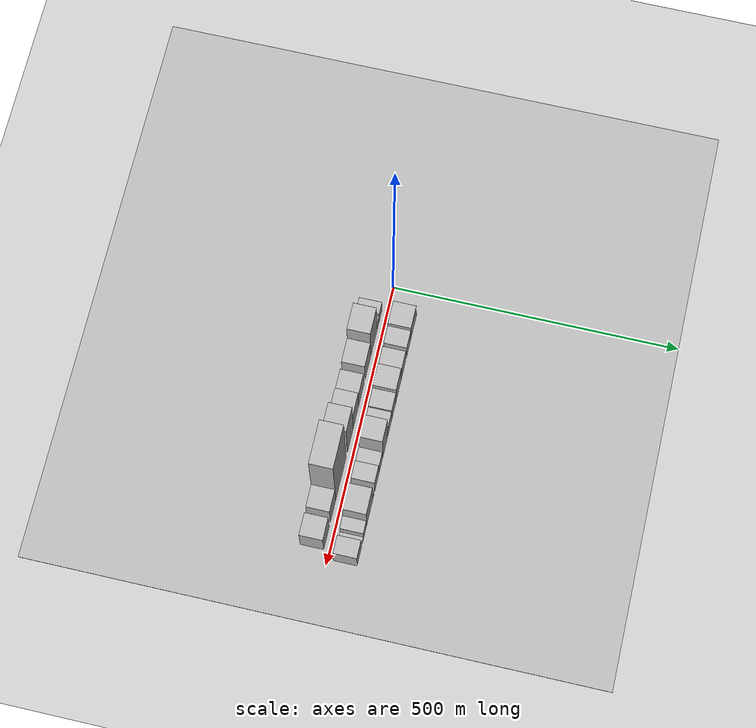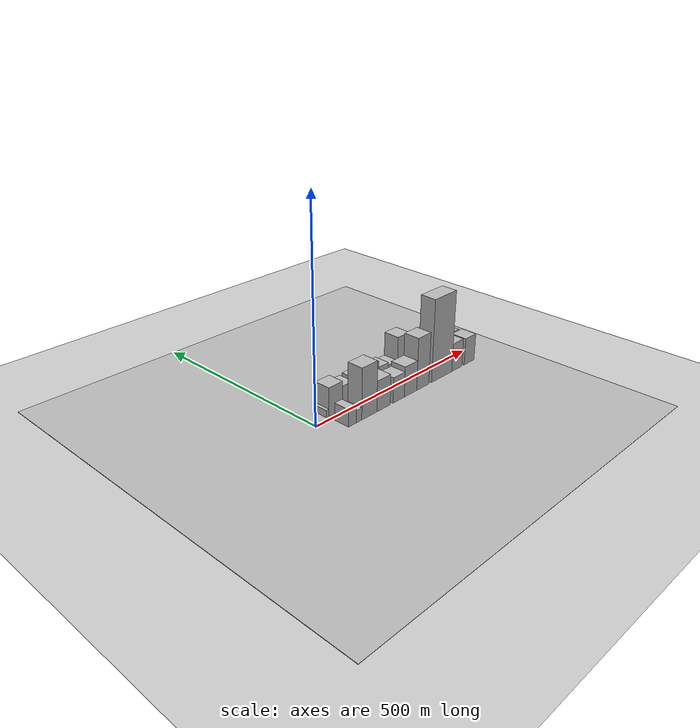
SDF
<?xml version="1.0" encoding="utf-8"?>

<sdf version="1.6">

   <world name="default">

      <gui fullscreen="0">

         <camera name="user_camera">

            <pose>-15 0 4.57585 0 0 0</pose>

            <view_controller>orbit</view_controller>

         </camera>

      </gui>

      <scene>

         <sky>

           <clouds>

             <speed>12</speed>

           </clouds>

         </sky>

         <ambient>0.4 0.4 0.4 1</ambient>

         <background>0.7 0.7 0.7 1</background>

         <shadows>1</shadows>

      </scene>

      <gravity>0 0 -9.8066</gravity>

      <magnetic_field>6e-06 2.3e-05 -4.2e-05</magnetic_field>

      <physics default="0" name="default_physics" type="ode">

         <ode>

            <solver>

               <type>quick</type>

               <iters>10</iters>

               <sor>1.0</sor>

               <use_dynamic_moi_rescaling>0</use_dynamic_moi_rescaling>

            </solver>

            <constraints>

               <cfm>0</cfm>

               <erp>0.2</erp>

               <contact_max_correcting_vel>100</contact_max_correcting_vel>

               <contact_surface_layer>0.001</contact_surface_layer>

            </constraints>

         </ode>

         <max_step_size>0.004</max_step_size>

         <real_time_factor>1</real_time_factor>

         <real_time_update_rate>250</real_time_update_rate>

      </physics>

      <light name="sun" type="directional">

         <cast_shadows>1</cast_shadows>

         <pose>0 0 10 0 0 0</pose>

         <diffuse>0.8 0.8 0.8 1</diffuse>

         <specular>0.2 0.2 0.2 1</specular>

         <attenuation>

            <range>1000</range>

            <constant>0.9</constant>

            <linear>0.01</linear>

            <quadratic>0.001</quadratic>

         </attenuation>

         <direction>-0.5 0.1 -0.9</direction>

      </light>

      <include>

         <name>ground_plane_1</name>

         <uri>model://HANNAS_ground_plane</uri>

         <pose>0 0 0  0 0 0</pose>

      </include>

      <include>

         <name>ground_plane_2</name>

         <uri>model://HANNAS_ground_plane</uri>

         <pose>100 0 0  0 0 0</pose>

      </include>

      <model name="building_1">

         <static>1</static>

         <pose frame="">43.7642 30.0000 0 0.000000 0.000000 1.570796</pose>

         <link name="link">

            <pose frame="">0 0 9.00 0 0 0</pose>

            <collision name="collision">

               <geometry>

                  <box>

                     <size>40.0000 7.5284 18.0000</size>

                  </box>

               </geometry>

               <max_contacts>10</max_contacts>

               <surface>

                  <contact>

                     <ode/>

                  </contact>

                  <bounce/>

                  <friction>

                     <torsional>

                        <ode/>

                     </torsional>

                     <ode/>

                  </friction>

               </surface>

            </collision>

            <visual name="visual">

               <cast_shadows>0</cast_shadows>

               <geometry>

                  <box>

                     <size>40.0000 7.5284 18.0000</size>

                  </box>

               </geometry>

               <material>

                  <script>

                     <uri>model://HANNAS_wall/materials/scripts</uri>

                     <uri>model://HANNAS_wall/materials/textures</uri>

                     <name>vrc/HANNAS_wall</name>

                  </script>

               </material>

            </visual>

            <self_collide>0</self_collide>

            <enable_wind>0</enable_wind>

            <kinematic>0</kinematic>

         </link>

      </model>

      <model name="building_2">

         <static>1</static>

         <pose frame="">68.0326 30.0000 0 0.000000 0.000000 1.570796</pose>

         <link name="link">

            <pose frame="">0 0 34.50 0 0 0</pose>

            <collision name="collision">

               <geometry>

                  <box>

                     <size>40.0000 41.0084 69.0000</size>

                  </box>

               </geometry>

               <max_contacts>10</max_contacts>

               <surface>

                  <contact>

                     <ode/>

                  </contact>

                  <bounce/>

                  <friction>

                     <torsional>

                        <ode/>

                     </torsional>

                     <ode/>

                  </friction>

               </surface>

            </collision>

            <visual name="visual">

               <cast_shadows>0</cast_shadows>

               <geometry>

                  <box>

                     <size>40.0000 41.0084 69.0000</size>

                  </box>

               </geometry>

               <material>

                  <script>

                     <uri>model://HANNAS_wall/materials/scripts</uri>

                     <uri>model://HANNAS_wall/materials/textures</uri>

                     <name>vrc/HANNAS_wall</name>

                  </script>

               </material>

            </visual>

            <self_collide>0</self_collide>

            <enable_wind>0</enable_wind>

            <kinematic>0</kinematic>

         </link>

      </model>

      <model name="building_3">

         <static>1</static>

         <pose frame="">104.3769 30.0000 0 0.000000 0.000000 1.570796</pose>

         <link name="link">

            <pose frame="">0 0 28.50 0 0 0</pose>

            <collision name="collision">

               <geometry>

                  <box>

                     <size>40.0000 31.6802 57.0000</size>

                  </box>

               </geometry>

               <max_contacts>10</max_contacts>

               <surface>

                  <contact>

                     <ode/>

                  </contact>

                  <bounce/>

                  <friction>

                     <torsional>

                        <ode/>

                     </torsional>

                     <ode/>

                  </friction>

               </surface>

            </collision>

            <visual name="visual">

               <cast_shadows>0</cast_shadows>

               <geometry>

                  <box>

                     <size>40.0000 31.6802 57.0000</size>

                  </box>

               </geometry>

               <material>

                  <script>

                     <uri>model://HANNAS_wall/materials/scripts</uri>

                     <uri>model://HANNAS_wall/materials/textures</uri>

                     <name>vrc/HANNAS_wall</name>

                  </script>

               </material>

            </visual>

            <self_collide>0</self_collide>

            <enable_wind>0</enable_wind>

            <kinematic>0</kinematic>

         </link>

      </model>

      <model name="building_4">

         <static>1</static>

         <pose frame="">143.5606 30.0000 0 0.000000 0.000000 1.570796</pose>

         <link name="link">

            <pose frame="">0 0 30.00 0 0 0</pose>

            <collision name="collision">

               <geometry>

                  <box>

                     <size>40.0000 32.6871 60.0000</size>

                  </box>

               </geometry>

               <max_contacts>10</max_contacts>

               <surface>

                  <contact>

                     <ode/>

                  </contact>

                  <bounce/>

                  <friction>

                     <torsional>

                        <ode/>

                     </torsional>

                     <ode/>

                  </friction>

               </surface>

            </collision>

            <visual name="visual">

               <cast_shadows>0</cast_shadows>

               <geometry>

                  <box>

                     <size>40.0000 32.6871 60.0000</size>

                  </box>

               </geometry>

               <material>

                  <script>

                     <uri>model://HANNAS_wall/materials/scripts</uri>

                     <uri>model://HANNAS_wall/materials/textures</uri>

                     <name>vrc/HANNAS_wall</name>

                  </script>

               </material>

            </visual>

            <self_collide>0</self_collide>

            <enable_wind>0</enable_wind>

            <kinematic>0</kinematic>

         </link>

      </model>

      <model name="building_5">

         <static>1</static>

         <pose frame="">182.4428 30.0000 0 0.000000 0.000000 1.570796</pose>

         <link name="link">

            <pose frame="">0 0 37.50 0 0 0</pose>

            <collision name="collision">

               <geometry>

                  <box>

                     <size>40.0000 39.0774 75.0000</size>

                  </box>

               </geometry>

               <max_contacts>10</max_contacts>

               <surface>

                  <contact>

                     <ode/>

                  </contact>

                  <bounce/>

                  <friction>

                     <torsional>

                        <ode/>

                     </torsional>

                     <ode/>

                  </friction>

               </surface>

            </collision>

            <visual name="visual">

               <cast_shadows>0</cast_shadows>

               <geometry>

                  <box>

                     <size>40.0000 39.0774 75.0000</size>

                  </box>

               </geometry>

               <material>

                  <script>

                     <uri>model://HANNAS_wall/materials/scripts</uri>

                     <uri>model://HANNAS_wall/materials/textures</uri>

                     <name>vrc/HANNAS_wall</name>

                  </script>

               </material>

            </visual>

            <self_collide>0</self_collide>

            <enable_wind>0</enable_wind>

            <kinematic>0</kinematic>

         </link>

      </model>

      <model name="building_6">

         <static>1</static>

         <pose frame="">218.1601 30.0000 0 0.000000 0.000000 1.570796</pose>

         <link name="link">

            <pose frame="">0 0 30.00 0 0 0</pose>

            <collision name="collision">

               <geometry>

                  <box>

                     <size>40.0000 32.3571 60.0000</size>

                  </box>

               </geometry>

               <max_contacts>10</max_contacts>

               <surface>

                  <contact>

                     <ode/>

                  </contact>

                  <bounce/>

                  <friction>

                     <torsional>

                        <ode/>

                     </torsional>

                     <ode/>

                  </friction>

               </surface>

            </collision>

            <visual name="visual">

               <cast_shadows>0</cast_shadows>

               <geometry>

                  <box>

                     <size>40.0000 32.3571 60.0000</size>

                  </box>

               </geometry>

               <material>

                  <script>

                     <uri>model://HANNAS_wall/materials/scripts</uri>

                     <uri>model://HANNAS_wall/materials/textures</uri>

                     <name>vrc/HANNAS_wall</name>

                  </script>

               </material>

            </visual>

            <self_collide>0</self_collide>

            <enable_wind>0</enable_wind>

            <kinematic>0</kinematic>

         </link>

      </model>

      <model name="building_7">

         <static>1</static>

         <pose frame="">249.4875 30.0000 0 0.000000 0.000000 1.570796</pose>

         <link name="link">

            <pose frame="">0 0 27.00 0 0 0</pose>

            <collision name="collision">

               <geometry>

                  <box>

                     <size>40.0000 30.2976 54.0000</size>

                  </box>

               </geometry>

               <max_contacts>10</max_contacts>

               <surface>

                  <contact>

                     <ode/>

                  </contact>

                  <bounce/>

                  <friction>

                     <torsional>

                        <ode/>

                     </torsional>

                     <ode/>

                  </friction>

               </surface>

            </collision>

            <visual name="visual">

               <cast_shadows>0</cast_shadows>

               <geometry>

                  <box>

                     <size>40.0000 30.2976 54.0000</size>

                  </box>

               </geometry>

               <material>

                  <script>

                     <uri>model://HANNAS_wall/materials/scripts</uri>

                     <uri>model://HANNAS_wall/materials/textures</uri>

                     <name>vrc/HANNAS_wall</name>

                  </script>

               </material>

            </visual>

            <self_collide>0</self_collide>

            <enable_wind>0</enable_wind>

            <kinematic>0</kinematic>

         </link>

      </model>

      <model name="building_8">

         <static>1</static>

         <pose frame="">283.9996 30.0000 0 0.000000 0.000000 1.570796</pose>

         <link name="link">

            <pose frame="">0 0 55.50 0 0 0</pose>

            <collision name="collision">

               <geometry>

                  <box>

                     <size>40.0000 38.7266 111.0000</size>

                  </box>

               </geometry>

               <max_contacts>10</max_contacts>

               <surface>

                  <contact>

                     <ode/>

                  </contact>

                  <bounce/>

                  <friction>

                     <torsional>

                        <ode/>

                     </torsional>

                     <ode/>

                  </friction>

               </surface>

            </collision>

            <visual name="visual">

               <cast_shadows>0</cast_shadows>

               <geometry>

                  <box>

                     <size>40.0000 38.7266 111.0000</size>

                  </box>

               </geometry>

               <material>

                  <script>

                     <uri>model://HANNAS_wall/materials/scripts</uri>

                     <uri>model://HANNAS_wall/materials/textures</uri>

                     <name>vrc/HANNAS_wall</name>

                  </script>

               </material>

            </visual>

            <self_collide>0</self_collide>

            <enable_wind>0</enable_wind>

            <kinematic>0</kinematic>

         </link>

      </model>

      <model name="building_9">

         <static>1</static>

         <pose frame="">316.9117 30.0000 0 0.000000 0.000000 1.570796</pose>

         <link name="link">

            <pose frame="">0 0 24.00 0 0 0</pose>

            <collision name="collision">

               <geometry>

                  <box>

                     <size>40.0000 27.0976 48.0000</size>

                  </box>

               </geometry>

               <max_contacts>10</max_contacts>

               <surface>

                  <contact>

                     <ode/>

                  </contact>

                  <bounce/>

                  <friction>

                     <torsional>

                        <ode/>

                     </torsional>

                     <ode/>

                  </friction>

               </surface>

            </collision>

            <visual name="visual">

               <cast_shadows>0</cast_shadows>

               <geometry>

                  <box>

                     <size>40.0000 27.0976 48.0000</size>

                  </box>

               </geometry>

               <material>

                  <script>

                     <uri>model://HANNAS_wall/materials/scripts</uri>

                     <uri>model://HANNAS_wall/materials/textures</uri>

                     <name>vrc/HANNAS_wall</name>

                  </script>

               </material>

            </visual>

            <self_collide>0</self_collide>

            <enable_wind>0</enable_wind>

            <kinematic>0</kinematic>

         </link>

      </model>

      <model name="building_10">

         <static>1</static>

         <pose frame="">345.7144 30.0000 0 0.000000 0.000000 1.570796</pose>

         <link name="link">

            <pose frame="">0 0 30.00 0 0 0</pose>

            <collision name="collision">

               <geometry>

                  <box>

                     <size>40.0000 30.5079 60.0000</size>

                  </box>

               </geometry>

               <max_contacts>10</max_contacts>

               <surface>

                  <contact>

                     <ode/>

                  </contact>

                  <bounce/>

                  <friction>

                     <torsional>

                        <ode/>

                     </torsional>

                     <ode/>

                  </friction>

               </surface>

            </collision>

            <visual name="visual">

               <cast_shadows>0</cast_shadows>

               <geometry>

                  <box>

                     <size>40.0000 30.5079 60.0000</size>

                  </box>

               </geometry>

               <material>

                  <script>

                     <uri>model://HANNAS_wall/materials/scripts</uri>

                     <uri>model://HANNAS_wall/materials/textures</uri>

                     <name>vrc/HANNAS_wall</name>

                  </script>

               </material>

            </visual>

            <self_collide>0</self_collide>

            <enable_wind>0</enable_wind>

            <kinematic>0</kinematic>

         </link>

      </model>

      <model name="building_11">

         <static>1</static>

         <pose frame="">370.7716 30.0000 0 0.000000 0.000000 1.570796</pose>

         <link name="link">

            <pose frame="">0 0 10.50 0 0 0</pose>

            <collision name="collision">

               <geometry>

                  <box>

                     <size>40.0000 9.6065 21.0000</size>

                  </box>

               </geometry>

               <max_contacts>10</max_contacts>

               <surface>

                  <contact>

                     <ode/>

                  </contact>

                  <bounce/>

                  <friction>

                     <torsional>

                        <ode/>

                     </torsional>

                     <ode/>

                  </friction>

               </surface>

            </collision>

            <visual name="visual">

               <cast_shadows>0</cast_shadows>

               <geometry>

                  <box>

                     <size>40.0000 9.6065 21.0000</size>

                  </box>

               </geometry>

               <material>

                  <script>

                     <uri>model://HANNAS_wall/materials/scripts</uri>

                     <uri>model://HANNAS_wall/materials/textures</uri>

                     <name>vrc/HANNAS_wall</name>

                  </script>

               </material>

            </visual>

            <self_collide>0</self_collide>

            <enable_wind>0</enable_wind>

            <kinematic>0</kinematic>

         </link>

      </model>

      <model name="building_12">

         <static>1</static>

         <pose frame="">398.2686 30.0000 0 0.000000 0.000000 1.570796</pose>

         <link name="link">

            <pose frame="">0 0 42.00 0 0 0</pose>

            <collision name="collision">

               <geometry>

                  <box>

                     <size>40.0000 45.3874 84.0000</size>

                  </box>

               </geometry>

               <max_contacts>10</max_contacts>

               <surface>

                  <contact>

                     <ode/>

                  </contact>

                  <bounce/>

                  <friction>

                     <torsional>

                        <ode/>

                     </torsional>

                     <ode/>

                  </friction>

               </surface>

            </collision>

            <visual name="visual">

               <cast_shadows>0</cast_shadows>

               <geometry>

                  <box>

                     <size>40.0000 45.3874 84.0000</size>

                  </box>

               </geometry>

               <material>

                  <script>

                     <uri>model://HANNAS_wall/materials/scripts</uri>

                     <uri>model://HANNAS_wall/materials/textures</uri>

                     <name>vrc/HANNAS_wall</name>

                  </script>

               </material>

            </visual>

            <self_collide>0</self_collide>

            <enable_wind>0</enable_wind>

            <kinematic>0</kinematic>

         </link>

      </model>

      <model name="building_13">

         <static>1</static>

         <pose frame="">432.0175 30.0000 0 0.000000 0.000000 1.570796</pose>

         <link name="link">

            <pose frame="">0 0 19.50 0 0 0</pose>

            <collision name="collision">

               <geometry>

                  <box>

                     <size>40.0000 22.1104 39.0000</size>

                  </box>

               </geometry>

               <max_contacts>10</max_contacts>

               <surface>

                  <contact>

                     <ode/>

                  </contact>

                  <bounce/>

                  <friction>

                     <torsional>

                        <ode/>

                     </torsional>

                     <ode/>

                  </friction>

               </surface>

            </collision>

            <visual name="visual">

               <cast_shadows>0</cast_shadows>

               <geometry>

                  <box>

                     <size>40.0000 22.1104 39.0000</size>

                  </box>

               </geometry>

               <material>

                  <script>

                     <uri>model://HANNAS_wall/materials/scripts</uri>

                     <uri>model://HANNAS_wall/materials/textures</uri>

                     <name>vrc/HANNAS_wall</name>

                  </script>

               </material>

            </visual>

            <self_collide>0</self_collide>

            <enable_wind>0</enable_wind>

            <kinematic>0</kinematic>

         </link>

      </model>

      <model name="building_14">

         <static>1</static>

         <pose frame="">446.6942 30.0000 0 0.000000 0.000000 1.570796</pose>

         <link name="link">

            <pose frame="">0 0 7.50 0 0 0</pose>

            <collision name="collision">

               <geometry>

                  <box>

                     <size>40.0000 7.2430 15.0000</size>

                  </box>

               </geometry>

               <max_contacts>10</max_contacts>

               <surface>

                  <contact>

                     <ode/>

                  </contact>

                  <bounce/>

                  <friction>

                     <torsional>

                        <ode/>

                     </torsional>

                     <ode/>

                  </friction>

               </surface>

            </collision>

            <visual name="visual">

               <cast_shadows>0</cast_shadows>

               <geometry>

                  <box>

                     <size>40.0000 7.2430 15.0000</size>

                  </box>

               </geometry>

               <material>

                  <script>

                     <uri>model://HANNAS_wall/materials/scripts</uri>

                     <uri>model://HANNAS_wall/materials/textures</uri>

                     <name>vrc/HANNAS_wall</name>

                  </script>

               </material>

            </visual>

            <self_collide>0</self_collide>

            <enable_wind>0</enable_wind>

            <kinematic>0</kinematic>

         </link>

      </model>

      <model name="building_15">

         <static>1</static>

         <pose frame="">473.9681 30.0000 0 0.000000 0.000000 1.570796</pose>

         <link name="link">

            <pose frame="">0 0 28.50 0 0 0</pose>

            <collision name="collision">

               <geometry>

                  <box>

                     <size>40.0000 31.3047 57.0000</size>

                  </box>

               </geometry>

               <max_contacts>10</max_contacts>

               <surface>

                  <contact>

                     <ode/>

                  </contact>

                  <bounce/>

                  <friction>

                     <torsional>

                        <ode/>

                     </torsional>

                     <ode/>

                  </friction>

               </surface>

            </collision>

            <visual name="visual">

               <cast_shadows>0</cast_shadows>

               <geometry>

                  <box>

                     <size>40.0000 31.3047 57.0000</size>

                  </box>

               </geometry>

               <material>

                  <script>

                     <uri>model://HANNAS_wall/materials/scripts</uri>

                     <uri>model://HANNAS_wall/materials/textures</uri>

                     <name>vrc/HANNAS_wall</name>

                  </script>

               </material>

            </visual>

            <self_collide>0</self_collide>

            <enable_wind>0</enable_wind>

            <kinematic>0</kinematic>

         </link>

      </model>

      <model name="building_16">

         <static>1</static>

         <pose frame="">56.0667 -30.0000 0 0.000000 0.000000 1.570796</pose>

         <link name="link">

            <pose frame="">0 0 21.00 0 0 0</pose>

            <collision name="collision">

               <geometry>

                  <box>

                     <size>40.0000 22.1335 42.0000</size>

                  </box>

               </geometry>

               <max_contacts>10</max_contacts>

               <surface>

                  <contact>

                     <ode/>

                  </contact>

                  <bounce/>

                  <friction>

                     <torsional>

                        <ode/>

                     </torsional>

                     <ode/>

                  </friction>

               </surface>

            </collision>

            <visual name="visual">

               <cast_shadows>0</cast_shadows>

               <geometry>

                  <box>

                     <size>40.0000 22.1335 42.0000</size>

                  </box>

               </geometry>

               <material>

                  <script>

                     <uri>model://HANNAS_wall/materials/scripts</uri>

                     <uri>model://HANNAS_wall/materials/textures</uri>

                     <name>vrc/HANNAS_wall</name>

                  </script>

               </material>

            </visual>

            <self_collide>0</self_collide>

            <enable_wind>0</enable_wind>

            <kinematic>0</kinematic>

         </link>

      </model>

      <model name="building_17">

         <static>1</static>

         <pose frame="">75.7608 -30.0000 0 0.000000 0.000000 1.570796</pose>

         <link name="link">

            <pose frame="">0 0 15.00 0 0 0</pose>

            <collision name="collision">

               <geometry>

                  <box>

                     <size>40.0000 17.2546 30.0000</size>

                  </box>

               </geometry>

               <max_contacts>10</max_contacts>

               <surface>

                  <contact>

                     <ode/>

                  </contact>

                  <bounce/>

                  <friction>

                     <torsional>

                        <ode/>

                     </torsional>

                     <ode/>

                  </friction>

               </surface>

            </collision>

            <visual name="visual">

               <cast_shadows>0</cast_shadows>

               <geometry>

                  <box>

                     <size>40.0000 17.2546 30.0000</size>

                  </box>

               </geometry>

               <material>

                  <script>

                     <uri>model://HANNAS_wall/materials/scripts</uri>

                     <uri>model://HANNAS_wall/materials/textures</uri>

                     <name>vrc/HANNAS_wall</name>

                  </script>

               </material>

            </visual>

            <self_collide>0</self_collide>

            <enable_wind>0</enable_wind>

            <kinematic>0</kinematic>

         </link>

      </model>

      <model name="building_18">

         <static>1</static>

         <pose frame="">107.8371 -30.0000 0 0.000000 0.000000 1.570796</pose>

         <link name="link">

            <pose frame="">0 0 61.50 0 0 0</pose>

            <collision name="collision">

               <geometry>

                  <box>

                     <size>40.0000 46.8979 123.0000</size>

                  </box>

               </geometry>

               <max_contacts>10</max_contacts>

               <surface>

                  <contact>

                     <ode/>

                  </contact>

                  <bounce/>

                  <friction>

                     <torsional>

                        <ode/>

                     </torsional>

                     <ode/>

                  </friction>

               </surface>

            </collision>

            <visual name="visual">

               <cast_shadows>0</cast_shadows>

               <geometry>

                  <box>

                     <size>40.0000 46.8979 123.0000</size>

                  </box>

               </geometry>

               <material>

                  <script>

                     <uri>model://HANNAS_wall/materials/scripts</uri>

                     <uri>model://HANNAS_wall/materials/textures</uri>

                     <name>vrc/HANNAS_wall</name>

                  </script>

               </material>

            </visual>

            <self_collide>0</self_collide>

            <enable_wind>0</enable_wind>

            <kinematic>0</kinematic>

         </link>

      </model>

      <model name="building_19">

         <static>1</static>

         <pose frame="">152.6218 -30.0000 0 0.000000 0.000000 1.570796</pose>

         <link name="link">

            <pose frame="">0 0 37.50 0 0 0</pose>

            <collision name="collision">

               <geometry>

                  <box>

                     <size>40.0000 42.6716 75.0000</size>

                  </box>

               </geometry>

               <max_contacts>10</max_contacts>

               <surface>

                  <contact>

                     <ode/>

                  </contact>

                  <bounce/>

                  <friction>

                     <torsional>

                        <ode/>

                     </torsional>

                     <ode/>

                  </friction>

               </surface>

            </collision>

            <visual name="visual">

               <cast_shadows>0</cast_shadows>

               <geometry>

                  <box>

                     <size>40.0000 42.6716 75.0000</size>

                  </box>

               </geometry>

               <material>

                  <script>

                     <uri>model://HANNAS_wall/materials/scripts</uri>

                     <uri>model://HANNAS_wall/materials/textures</uri>

                     <name>vrc/HANNAS_wall</name>

                  </script>

               </material>

            </visual>

            <self_collide>0</self_collide>

            <enable_wind>0</enable_wind>

            <kinematic>0</kinematic>

         </link>

      </model>

      <model name="building_20">

         <static>1</static>

         <pose frame="">201.7921 -30.0000 0 0.000000 0.000000 1.570796</pose>

         <link name="link">

            <pose frame="">0 0 31.50 0 0 0</pose>

            <collision name="collision">

               <geometry>

                  <box>

                     <size>40.0000 37.6690 63.0000</size>

                  </box>

               </geometry>

               <max_contacts>10</max_contacts>

               <surface>

                  <contact>

                     <ode/>

                  </contact>

                  <bounce/>

                  <friction>

                     <torsional>

                        <ode/>

                     </torsional>

                     <ode/>

                  </friction>

               </surface>

            </collision>

            <visual name="visual">

               <cast_shadows>0</cast_shadows>

               <geometry>

                  <box>

                     <size>40.0000 37.6690 63.0000</size>

                  </box>

               </geometry>

               <material>

                  <script>

                     <uri>model://HANNAS_wall/materials/scripts</uri>

                     <uri>model://HANNAS_wall/materials/textures</uri>

                     <name>vrc/HANNAS_wall</name>

                  </script>

               </material>

            </visual>

            <self_collide>0</self_collide>

            <enable_wind>0</enable_wind>

            <kinematic>0</kinematic>

         </link>

      </model>

      <model name="building_21">

         <static>1</static>

         <pose frame="">241.5884 -30.0000 0 0.000000 0.000000 1.570796</pose>

         <link name="link">

            <pose frame="">0 0 37.50 0 0 0</pose>

            <collision name="collision">

               <geometry>

                  <box>

                     <size>40.0000 41.9237 75.0000</size>

                  </box>

               </geometry>

               <max_contacts>10</max_contacts>

               <surface>

                  <contact>

                     <ode/>

                  </contact>

                  <bounce/>

                  <friction>

                     <torsional>

                        <ode/>

                     </torsional>

                     <ode/>

                  </friction>

               </surface>

            </collision>

            <visual name="visual">

               <cast_shadows>0</cast_shadows>

               <geometry>

                  <box>

                     <size>40.0000 41.9237 75.0000</size>

                  </box>

               </geometry>

               <material>

                  <script>

                     <uri>model://HANNAS_wall/materials/scripts</uri>

                     <uri>model://HANNAS_wall/materials/textures</uri>

                     <name>vrc/HANNAS_wall</name>

                  </script>

               </material>

            </visual>

            <self_collide>0</self_collide>

            <enable_wind>0</enable_wind>

            <kinematic>0</kinematic>

         </link>

      </model>

      <model name="building_22">

         <static>1</static>

         <pose frame="">283.7074 -30.0000 0 0.000000 0.000000 1.570796</pose>

         <link name="link">

            <pose frame="">0 0 64.50 0 0 0</pose>

            <collision name="collision">

               <geometry>

                  <box>

                     <size>40.0000 42.3142 129.0000</size>

                  </box>

               </geometry>

               <max_contacts>10</max_contacts>

               <surface>

                  <contact>

                     <ode/>

                  </contact>

                  <bounce/>

                  <friction>

                     <torsional>

                        <ode/>

                     </torsional>

                     <ode/>

                  </friction>

               </surface>

            </collision>

            <visual name="visual">

               <cast_shadows>0</cast_shadows>

               <geometry>

                  <box>

                     <size>40.0000 42.3142 129.0000</size>

                  </box>

               </geometry>

               <material>

                  <script>

                     <uri>model://HANNAS_wall/materials/scripts</uri>

                     <uri>model://HANNAS_wall/materials/textures</uri>

                     <name>vrc/HANNAS_wall</name>

                  </script>

               </material>

            </visual>

            <self_collide>0</self_collide>

            <enable_wind>0</enable_wind>

            <kinematic>0</kinematic>

         </link>

      </model>

      <model name="building_23">

         <static>1</static>

         <pose frame="">351.8930 -30.0000 0 0.000000 0.000000 1.570796</pose>

         <link name="link">

            <pose frame="">0 0 102.00 0 0 0</pose>

            <collision name="collision">

               <geometry>

                  <box>

                     <size>40.0000 74.0571 204.0000</size>

                  </box>

               </geometry>

               <max_contacts>10</max_contacts>

               <surface>

                  <contact>

                     <ode/>

                  </contact>

                  <bounce/>

                  <friction>

                     <torsional>

                        <ode/>

                     </torsional>

                     <ode/>

                  </friction>

               </surface>

            </collision>

            <visual name="visual">

               <cast_shadows>0</cast_shadows>

               <geometry>

                  <box>

                     <size>40.0000 74.0571 204.0000</size>

                  </box>

               </geometry>

               <material>

                  <script>

                     <uri>model://HANNAS_wall/materials/scripts</uri>

                     <uri>model://HANNAS_wall/materials/textures</uri>

                     <name>vrc/HANNAS_wall</name>

                  </script>

               </material>

            </visual>

            <self_collide>0</self_collide>

            <enable_wind>0</enable_wind>

            <kinematic>0</kinematic>

         </link>

      </model>

      <model name="building_24">

         <static>1</static>

         <pose frame="">408.2047 -30.0000 0 0.000000 0.000000 1.570796</pose>

         <link name="link">

            <pose frame="">0 0 36.00 0 0 0</pose>

            <collision name="collision">

               <geometry>

                  <box>

                     <size>40.0000 38.5661 72.0000</size>

                  </box>

               </geometry>

               <max_contacts>10</max_contacts>

               <surface>

                  <contact>

                     <ode/>

                  </contact>

                  <bounce/>

                  <friction>

                     <torsional>

                        <ode/>

                     </torsional>

                     <ode/>

                  </friction>

               </surface>

            </collision>

            <visual name="visual">

               <cast_shadows>0</cast_shadows>

               <geometry>

                  <box>

                     <size>40.0000 38.5661 72.0000</size>

                  </box>

               </geometry>

               <material>

                  <script>

                     <uri>model://HANNAS_wall/materials/scripts</uri>

                     <uri>model://HANNAS_wall/materials/textures</uri>

                     <name>vrc/HANNAS_wall</name>

                  </script>

               </material>

            </visual>

            <self_collide>0</self_collide>

            <enable_wind>0</enable_wind>

            <kinematic>0</kinematic>

         </link>

      </model>

      <model name="building_25">

         <static>1</static>

         <pose frame="">455.9298 -30.0000 0 0.000000 0.000000 1.570796</pose>

         <link name="link">

            <pose frame="">0 0 34.50 0 0 0</pose>

            <collision name="collision">

               <geometry>

                  <box>

                     <size>40.0000 38.8841 69.0000</size>

                  </box>

               </geometry>

               <max_contacts>10</max_contacts>

               <surface>

                  <contact>

                     <ode/>

                  </contact>

                  <bounce/>

                  <friction>

                     <torsional>

                        <ode/>

                     </torsional>

                     <ode/>

                  </friction>

               </surface>

            </collision>

            <visual name="visual">

               <cast_shadows>0</cast_shadows>

               <geometry>

                  <box>

                     <size>40.0000 38.8841 69.0000</size>

                  </box>

               </geometry>

               <material>

                  <script>

                     <uri>model://HANNAS_wall/materials/scripts</uri>

                     <uri>model://HANNAS_wall/materials/textures</uri>

                     <name>vrc/HANNAS_wall</name>

                  </script>

               </material>

            </visual>

            <self_collide>0</self_collide>

            <enable_wind>0</enable_wind>

            <kinematic>0</kinematic>

         </link>

      </model>

   </world>

</sdf>

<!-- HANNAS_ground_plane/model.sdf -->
<sdf version="1.4">
<model name="HANNAS_ground_plane">
  <static>true</static>
    <link name="link">
      <collision name="collision">
        <geometry>
          <plane>
            <normal>0 0 1</normal>
            <size>1000 1000</size>
          </plane>
        </geometry>
        <surface>
          <friction>
            <ode>
              <mu>100</mu>
              <mu2>50</mu2>
            </ode>
          </friction>
        </surface>
      </collision>
      <visual name="visual">
        <cast_shadows>false</cast_shadows>
        <geometry>
          <plane>
            <normal>0 0 1</normal>
            <size>1000 1000</size>
          </plane>
        </geometry>
        <material>
          <script>
            <uri>model://HANNAS_ground_plane/materials/scripts/HANNAS_ground_plane.material</uri>
	    <uri>model://HANNAS_ground_plane/materials/textures</uri>
            <name>HANNASGroundPlane/Image</name>
          </script>
        </material>
      </visual>
    </link>
  </model>
</sdf>
